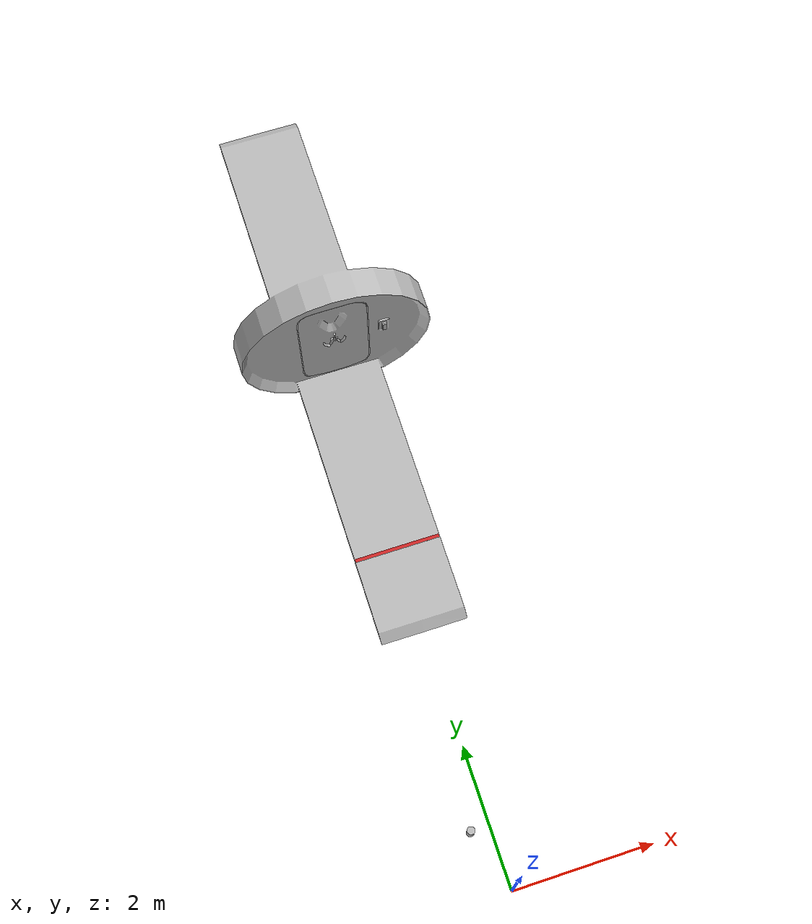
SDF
<sdf version="1.6">
 <world name="default">
  <model name="beer">
   <link name="link">
    <pose>0 0 0.115 0 -0 0</pose>
    <inertial>
     <mass>0.39</mass>
     <inertia><ixx>0.00058</ixx><ixy>0</ixy><ixz>0</ixz><iyy>0.00058</iyy><iyz>0</iyz><izz>0.00019</izz></inertia>
    </inertial>
    <collision name="collision">
     <geometry><cylinder><radius>0.055</radius><length>0.23</length></cylinder></geometry>
    </collision>
    <visual name="visual">
     <geometry><cylinder><radius>0.055</radius><length>0.23</length></cylinder></geometry>
     <material>
      <script>
       <uri>model://beer/materials/scripts</uri>
       <uri>model://beer/materials/textures</uri>
       <name>Beer/Diffuse</name>
      </script>
     </material>
    </visual>
   </link>
   <pose>-0.277491 0.883694 -0.00088 5e-05 -9e-06 -0.002358</pose>
  </model>
  <model name="src_doorway">
   <pose>0.002354 7.93567 0 0 -0 3.14159</pose>
   <model name="src_doorframe">
    <static>1</static>
    <link name="frame">
     <inertial>
      <pose>0 0 0.05 0 -0 0</pose>
      <mass>2873</mass>
      <inertia><ixx>16895.6</ixx><ixy>0</ixy><ixz>0</ixz><iyy>376.483</iyy><iyz>0</iyz><izz>17267.3</izz></inertia>
     </inertial>
     <collision name="platform">
      <pose>0 0 0.05 0 -0 0</pose>
      <geometry><box><size>1.25 8.209 0.1</size></box></geometry>
      <surface>
       <contact><ode><kp>1e+16</kp><kd>100</kd><max_vel>1000</max_vel><min_depth>0.001</min_depth></ode></contact>
       <friction><ode><mu>1.5</mu><mu2>1.5</mu2></ode></friction>
      </surface>
     </collision>
     <collision name="front_ramp_1">
      <pose>0 4.1135 0.05 0.96 -0 0</pose>
      <geometry><box><size>1.25 0.072 0.072</size></box></geometry>
      <surface>
       <contact><ode><kp>1e+16</kp><kd>100</kd><max_vel>1000</max_vel><min_depth>0.001</min_depth></ode></contact>
       <friction><ode><mu>1.5</mu><mu2>1.5</mu2></ode></friction>
      </surface>
     </collision>
     <collision name="front_ramp_2">
      <pose>0 4.1635 0.031 0.96 -0 0</pose>
      <geometry><box><size>1.25 0.045 0.045</size></box></geometry>
      <surface>
       <contact><ode><kp>1e+16</kp><kd>100</kd><max_vel>1000</max_vel><min_depth>0.001</min_depth></ode></contact>
       <friction><ode><mu>1.5</mu><mu2>1.5</mu2></ode></friction>
      </surface>
     </collision>
     <collision name="front_ramp_3">
      <pose>0 4.1935 0.02 0.96 -0 0</pose>
      <geometry><box><size>1.25 0.028 0.028</size></box></geometry>
      <surface>
       <contact><ode><kp>1e+16</kp><kd>100</kd><max_vel>1000</max_vel><min_depth>0.001</min_depth></ode></contact>
       <friction><ode><mu>1.5</mu><mu2>1.5</mu2></ode></friction>
      </surface>
     </collision>
     <collision name="front_ramp_4">
      <pose>0 4.2135 0.012 0.96 -0 0</pose>
      <geometry><box><size>1.25 0.017 0.017</size></box></geometry>
      <surface>
       <contact><ode><kp>1e+16</kp><kd>100</kd><max_vel>1000</max_vel><min_depth>0.001</min_depth></ode></contact>
       <friction><ode><mu>1.5</mu><mu2>1.5</mu2></ode></friction>
      </surface>
     </collision>
     <collision name="front_ramp_5">
      <pose>0 4.2235 0.008 0.96 -0 0</pose>
      <geometry><box><size>1.25 0.012 0.012</size></box></geometry>
      <surface>
       <contact><ode><kp>1e+16</kp><kd>100</kd><max_vel>1000</max_vel><min_depth>0.001</min_depth></ode></contact>
       <friction><ode><mu>1.5</mu><mu2>1.5</mu2></ode></friction>
      </surface>
     </collision>
     <collision name="front_ramp_6">
      <pose>0 4.231 0.005 0.96 -0 0</pose>
      <geometry><box><size>1.25 0.008 0.008</size></box></geometry>
      <surface>
       <contact><ode><kp>1e+16</kp><kd>100</kd><max_vel>1000</max_vel><min_depth>0.001</min_depth></ode></contact>
       <friction><ode><mu>1.5</mu><mu2>1.5</mu2></ode></friction>
      </surface>
     </collision>
     <collision name="front_ramp_7">
      <pose>0 4.2365 0.003 0.96 -0 0</pose>
      <geometry><box><size>1.25 0.005 0.005</size></box></geometry>
      <surface>
       <contact><ode><kp>1e+16</kp><kd>100</kd><max_vel>1000</max_vel><min_depth>0.001</min_depth></ode></contact>
       <friction><ode><mu>1.5</mu><mu2>1.5</mu2></ode></friction>
      </surface>
     </collision>
     <collision name="front_ramp_8">
      <pose>0 4.2405 0.002 0.96 -0 0</pose>
      <geometry><box><size>1.25 0.0026 0.0026</size></box></geometry>
      <surface>
       <contact><ode><kp>1e+16</kp><kd>100</kd><max_vel>1000</max_vel><min_depth>0.001</min_depth></ode></contact>
       <friction><ode><mu>1.5</mu><mu2>1.5</mu2></ode></friction>
      </surface>
     </collision>
     <collision name="back_ramp_1">
      <pose>0 -4.1135 0.05 -0.96 0 0</pose>
      <geometry><box><size>1.25 0.072 0.072</size></box></geometry>
      <surface>
       <contact><ode><kp>1e+16</kp><kd>100</kd><max_vel>1000</max_vel><min_depth>0.001</min_depth></ode></contact>
       <friction><ode><mu>1.5</mu><mu2>1.5</mu2></ode></friction>
      </surface>
     </collision>
     <collision name="back_ramp_2">
      <pose>0 -4.1635 0.031 -0.96 0 0</pose>
      <geometry><box><size>1.25 0.045 0.045</size></box></geometry>
      <surface>
       <contact><ode><kp>1e+16</kp><kd>100</kd><max_vel>1000</max_vel><min_depth>0.001</min_depth></ode></contact>
       <friction><ode><mu>1.5</mu><mu2>1.5</mu2></ode></friction>
      </surface>
     </collision>
     <collision name="back_ramp_3">
      <pose>0 -4.1935 0.02 -0.96 0 0</pose>
      <geometry><box><size>1.25 0.028 0.028</size></box></geometry>
      <surface>
       <contact><ode><kp>1e+16</kp><kd>100</kd><max_vel>1000</max_vel><min_depth>0.001</min_depth></ode></contact>
       <friction><ode><mu>1.5</mu><mu2>1.5</mu2></ode></friction>
      </surface>
     </collision>
     <collision name="back_ramp_4">
      <pose>0 -4.2135 0.012 -0.96 0 0</pose>
      <geometry><box><size>1.25 0.017 0.017</size></box></geometry>
      <surface>
       <contact><ode><kp>1e+16</kp><kd>100</kd><max_vel>1000</max_vel><min_depth>0.001</min_depth></ode></contact>
       <friction><ode><mu>1.5</mu><mu2>1.5</mu2></ode></friction>
      </surface>
     </collision>
     <collision name="back_ramp_5">
      <pose>0 -4.2235 0.008 -0.96 0 0</pose>
      <geometry><box><size>1.25 0.012 0.012</size></box></geometry>
      <surface>
       <contact><ode><kp>1e+16</kp><kd>100</kd><max_vel>1000</max_vel><min_depth>0.001</min_depth></ode></contact>
       <friction><ode><mu>1.5</mu><mu2>1.5</mu2></ode></friction>
      </surface>
     </collision>
     <collision name="back_ramp_6">
      <pose>0 -4.231 0.005 -0.96 0 0</pose>
      <geometry><box><size>1.25 0.008 0.008</size></box></geometry>
      <surface>
       <contact><ode><kp>1e+16</kp><kd>100</kd><max_vel>1000</max_vel><min_depth>0.001</min_depth></ode></contact>
       <friction><ode><mu>1.5</mu><mu2>1.5</mu2></ode></friction>
      </surface>
     </collision>
     <collision name="back_ramp_7">
      <pose>0 -4.2365 0.003 -0.96 0 0</pose>
      <geometry><box><size>1.25 0.005 0.005</size></box></geometry>
      <surface>
       <contact><ode><kp>1e+16</kp><kd>100</kd><max_vel>1000</max_vel><min_depth>0.001</min_depth></ode></contact>
       <friction><ode><mu>1</mu><mu2>1</mu2></ode></friction>
      </surface>
     </collision>
     <collision name="back_ramp_8">
      <pose>0 -4.2405 0.002 -0.96 0 0</pose>
      <geometry><box><size>1.25 0.0026 0.0026</size></box></geometry>
      <surface>
       <contact><ode><kp>1e+16</kp><kd>100</kd><max_vel>1000</max_vel><min_depth>0.001</min_depth></ode></contact>
       <friction><ode><mu>1.5</mu><mu2>1.5</mu2></ode></friction>
      </surface>
     </collision>
     <collision name="left_1">
      <pose>0.665 0 1.2 0 -0 0</pose>
      <geometry><box><size>0.3 0.19 2.2</size></box></geometry>
      <surface>
       <contact><ode><kp>1e+16</kp><kd>100</kd><max_vel>1000</max_vel><min_depth>0.001</min_depth></ode></contact>
       <friction><ode><mu>1.5</mu><mu2>1.5</mu2></ode></friction>
      </surface>
     </collision>
     <collision name="left_2">
      <pose>0.96 0 1.21 0 -0 0</pose>
      <geometry><box><size>0.3 0.19 1.65</size></box></geometry>
      <surface>
       <contact><ode><kp>1e+16</kp><kd>100</kd><max_vel>1000</max_vel><min_depth>0.001</min_depth></ode></contact>
       <friction><ode><mu>1.5</mu><mu2>1.5</mu2></ode></friction>
      </surface>
     </collision>
     <collision name="left_3">
      <pose>1.23 0 1.2 0 -0 0</pose>
      <geometry><box><size>0.25 0.19 0.6</size></box></geometry>
      <surface>
       <contact><ode><kp>1e+16</kp><kd>100</kd><max_vel>1000</max_vel><min_depth>0.001</min_depth></ode></contact>
       <friction><ode><mu>1.5</mu><mu2>1.5</mu2></ode></friction>
      </surface>
     </collision>
     <collision name="right_1">
      <pose>-0.665 0 1.2 0 -0 0</pose>
      <geometry><box><size>0.3 0.19 2.2</size></box></geometry>
      <surface>
       <contact><ode><kp>1e+16</kp><kd>100</kd><max_vel>1000</max_vel><min_depth>0.001</min_depth></ode></contact>
       <friction><ode><mu>1.5</mu><mu2>1.5</mu2></ode></friction>
      </surface>
     </collision>
     <collision name="right_2">
      <pose>-0.96 0 1.21 0 -0 0</pose>
      <geometry><box><size>0.3 0.19 1.65</size></box></geometry>
      <surface>
       <contact><ode><kp>1e+16</kp><kd>100</kd><max_vel>1000</max_vel><min_depth>0.001</min_depth></ode></contact>
       <friction><ode><mu>1.5</mu><mu2>1.5</mu2></ode></friction>
      </surface>
     </collision>
     <collision name="right_3">
      <pose>-1.23 0 1.2 0 -0 0</pose>
      <geometry><box><size>0.25 0.19 0.6</size></box></geometry>
      <surface>
       <contact><ode><kp>1e+16</kp><kd>100</kd><max_vel>1000</max_vel><min_depth>0.001</min_depth></ode></contact>
       <friction><ode><mu>1.5</mu><mu2>1.5</mu2></ode></friction>
      </surface>
     </collision>
     <collision name="top_1">
      <pose>0 0 2.32 0 -0 0</pose>
      <geometry><box><size>1.25 0.19 0.25</size></box></geometry>
      <surface>
       <contact><ode><kp>1e+16</kp><kd>100</kd><max_vel>1000</max_vel><min_depth>0.001</min_depth></ode></contact>
       <friction><ode><mu>1.5</mu><mu2>1.5</mu2></ode></friction>
      </surface>
     </collision>
     <collision name="diagonal_top_left">
      <pose>0.55 0 2.2 0 0.785 0</pose>
      <geometry><box><size>0.3 0.19 0.25</size></box></geometry>
      <surface>
       <contact><ode><kp>1e+16</kp><kd>100</kd><max_vel>1000</max_vel><min_depth>0.001</min_depth></ode></contact>
       <friction><ode><mu>1.5</mu><mu2>1.5</mu2></ode></friction>
      </surface>
     </collision>
     <collision name="diagonal_top_right">
      <pose>-0.55 0 2.2 0 -0.785 0</pose>
      <geometry><box><size>0.3 0.19 0.25</size></box></geometry>
      <surface>
       <contact><ode><kp>1e+16</kp><kd>100</kd><max_vel>1000</max_vel><min_depth>0.001</min_depth></ode></contact>
       <friction><ode><mu>1.5</mu><mu2>1.5</mu2></ode></friction>
      </surface>
     </collision>
     <collision name="diagonal_bottom_left">
      <pose>0.5 0 0.185 0 -0.785 0</pose>
      <geometry><box><size>0.3 0.19 0.07</size></box></geometry>
      <surface>
       <contact><ode><kp>1e+16</kp><kd>100</kd><max_vel>1000</max_vel><min_depth>0.001</min_depth></ode></contact>
       <friction><ode><mu>1.5</mu><mu2>1.5</mu2></ode></friction>
      </surface>
     </collision>
     <collision name="diagonal_bottom_right">
      <pose>-0.5 0 0.185 0 0.785 0</pose>
      <geometry><box><size>0.3 0.19 0.07</size></box></geometry>
      <surface>
       <contact><ode><kp>1e+16</kp><kd>100</kd><max_vel>1000</max_vel><min_depth>0.001</min_depth></ode></contact>
       <friction><ode><mu>1.5</mu><mu2>1.5</mu2></ode></friction>
      </surface>
     </collision>
     <visual name="visual">
      <geometry><mesh><uri>model://src_doorway/meshes/doorway_base.dae</uri></mesh></geometry>
     </visual>
     <visual name="start_line">
      <pose>0 3 0.1 0 -0 0</pose>
      <geometry><box><size>1.25 0.05 0.001</size></box></geometry>
      <material>
       <script><uri>file://media/materials/scripts/gazebo.material</uri><name>Gazebo/Red</name></script>
      </material>
     </visual>
     <visual name="finish_line">
      <pose>0 -1 0.1 0 -0 0</pose>
      <geometry><box><size>1.25 0.05 0.001</size></box></geometry>
      <material>
       <script><uri>file://media/materials/scripts/gazebo.material</uri><name>Gazebo/Red</name></script>
      </material>
     </visual>
    </link>
   </model>
   <model name="src_door">
    <link name="door">
     <pose>0 0 1 0 -0 0</pose>
     <inertial>
      <pose>0 0 0.14 0 -0 0</pose>
      <mass>182</mass>
      <inertia><ixx>63.04</ixx><ixy>0</ixy><ixz>0</ixz><iyy>69.932</iyy><iyz>0</iyz><izz>7.979</izz></inertia>
     </inertial>
     <collision name="center">
      <pose>0 0 0.14 0 -0 0</pose>
      <geometry><box><size>0.7 0.19 2.03</size></box></geometry>
      <surface>
       <contact><ode><kp>1e+16</kp><kd>100</kd><max_vel>1000</max_vel><min_depth>0.001</min_depth></ode></contact>
       <friction><ode><mu>1.5</mu><mu2>1.5</mu2></ode></friction>
      </surface>
     </collision>
     <collision name="left">
      <pose>-0.4 0 0.18 0 -0 0</pose>
      <geometry><box><size>0.17 0.19 1.7</size></box></geometry>
      <surface>
       <contact><ode><kp>1e+16</kp><kd>100</kd><max_vel>1000</max_vel><min_depth>0.001</min_depth></ode></contact>
       <friction><ode><mu>1.5</mu><mu2>1.5</mu2></ode></friction>
      </surface>
     </collision>
     <collision name="right">
      <pose>0.4 0 0.18 0 -0 0</pose>
      <geometry><box><size>0.17 0.19 1.7</size></box></geometry>
      <surface>
       <contact><ode><kp>1e+16</kp><kd>100</kd><max_vel>1000</max_vel><min_depth>0.001</min_depth></ode></contact>
       <friction><ode><mu>1.5</mu><mu2>1.5</mu2></ode></friction>
      </surface>
     </collision>
     <collision name="top_left">
      <pose>-0.36 0 1.04 1.57 -0 0</pose>
      <geometry><cylinder><radius>0.1</radius><length>0.18</length></cylinder></geometry>
      <surface>
       <contact><ode><kp>1e+16</kp><kd>100</kd><max_vel>1000</max_vel><min_depth>0.001</min_depth></ode></contact>
       <friction><ode><mu>1.5</mu><mu2>1.5</mu2></ode></friction>
      </surface>
     </collision>
     <collision name="top_right">
      <pose>0.36 0 1.04 1.57 -0 0</pose>
      <geometry><cylinder><radius>0.1</radius><length>0.18</length></cylinder></geometry>
      <surface>
       <contact><ode><kp>1e+16</kp><kd>100</kd><max_vel>1000</max_vel><min_depth>0.001</min_depth></ode></contact>
       <friction><ode><mu>1.5</mu><mu2>1.5</mu2></ode></friction>
      </surface>
     </collision>
     <collision name="bottom_left">
      <pose>-0.36 0 -0.73 1.57 -0 0</pose>
      <geometry><cylinder><radius>0.1</radius><length>0.18</length></cylinder></geometry>
      <surface>
       <contact><ode><kp>1e+16</kp><kd>100</kd><max_vel>1000</max_vel><min_depth>0.001</min_depth></ode></contact>
       <friction><ode><mu>1.5</mu><mu2>1.5</mu2></ode></friction>
      </surface>
     </collision>
     <collision name="bottom_right">
      <pose>0.36 0 -0.73 1.57 -0 0</pose>
      <geometry><cylinder><radius>0.1</radius><length>0.18</length></cylinder></geometry>
      <surface>
       <contact><ode><kp>1e+16</kp><kd>100</kd><max_vel>1000</max_vel><min_depth>0.001</min_depth></ode></contact>
       <friction><ode><mu>1.5</mu><mu2>1.5</mu2></ode></friction>
      </surface>
     </collision>
     <collision name="hinge">
      <pose>0.507 -0.135 0.17 0 -0 0</pose>
      <geometry><cylinder><radius>0.038</radius><length>1.48</length></cylinder></geometry>
      <surface>
       <contact><ode><kp>1e+16</kp><kd>100</kd><max_vel>1000</max_vel><min_depth>0.001</min_depth></ode></contact>
       <friction><ode><mu>1.5</mu><mu2>1.5</mu2></ode></friction>
      </surface>
     </collision>
     <visual name="visual">
      <pose>0 0 -1 0 -0 0</pose>
      <geometry><mesh><uri>model://src_doorway/meshes/doorway_door.dae</uri></mesh></geometry>
     </visual>
    </link>
    <link name="button">
     <pose>-0.735 0.15 1.247 0 -0 0</pose>
     <inertial>
      <mass>0.2</mass>
      <inertia>
       <ixx>0.000432</ixx>
       <ixy>0</ixy>
       <ixz>0</ixz>
       <iyy>0.000487</iyy>
       <iyz>0</iyz>
       <izz>6.54e-05</izz>
      </inertia>
     </inertial>
     <collision name="collision">
      <geometry><box><size>0.06 0.018 0.16</size></box></geometry>
      <surface>
       <contact><ode><kp>1e+16</kp><kd>100</kd><max_vel>1000</max_vel><min_depth>0.001</min_depth></ode></contact>
       <friction><ode><mu>1.5</mu><mu2>1.5</mu2></ode></friction>
      </surface>
     </collision>
     <visual name="visual">
      <geometry><box><size>0.06 0.018 0.16</size></box></geometry>
      <material>
       <script>
        <uri>model://src_doorway/materials/scripts</uri>
        <uri>model://src_doorway/materials/textures</uri>
        <name>src_doorway_button/Diffuse</name>
       </script>
      </material>
     </visual>
    </link>
   </model>
   <joint name="hinge" type="revolute">
    <parent>src_doorframe::frame</parent>
    <child>src_door::door</child>
    <pose>0.5 -0.14 0 0 -0 0</pose>
    <axis>
     <xyz>0 0 1</xyz>
     <limit><lower>0</lower><upper>3</upper></limit>
     <dynamics>
      <damping>1</damping>
      <friction>1</friction>
      <spring_reference>0</spring_reference>
      <spring_stiffness>0</spring_stiffness>
     </dynamics>
     <use_parent_model_frame>1</use_parent_model_frame>
    </axis>
    <physics><ode><cfm_damping>1</cfm_damping><limit><cfm>0</cfm><erp>0.2</erp></limit></ode></physics>
   </joint>
   <joint name="button_mechanism" type="prismatic">
    <parent>src_doorframe::frame</parent>
    <child>src_door::button</child>
    <pose>-0.735 0.15 1.247 0 -0 0</pose>
    <axis>
     <xyz>0 1 0</xyz>
     <limit><lower>0</lower><upper>0.01</upper></limit>
     <dynamics>
      <damping>10</damping>
      <spring_stiffness>800</spring_stiffness>
      <spring_reference>0</spring_reference>
     </dynamics>
     <use_parent_model_frame>1</use_parent_model_frame>
    </axis>
    <physics><ode><cfm_damping>1</cfm_damping><limit><cfm>0</cfm><erp>0.2</erp></limit></ode></physics>
   </joint>
  </model>
 </world>
</sdf>
